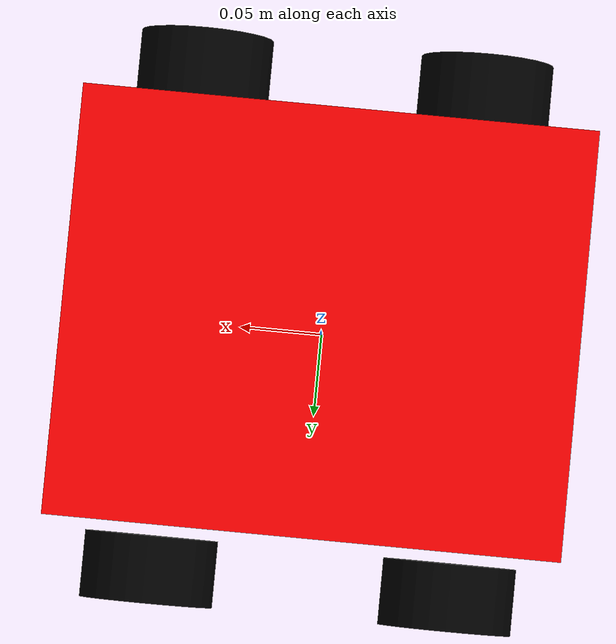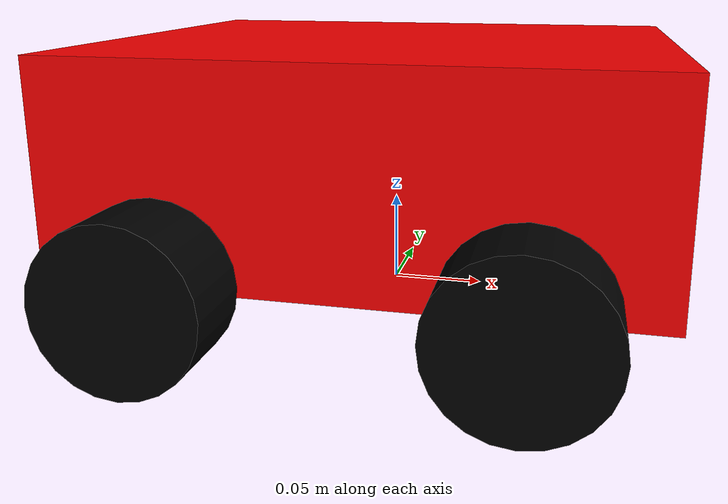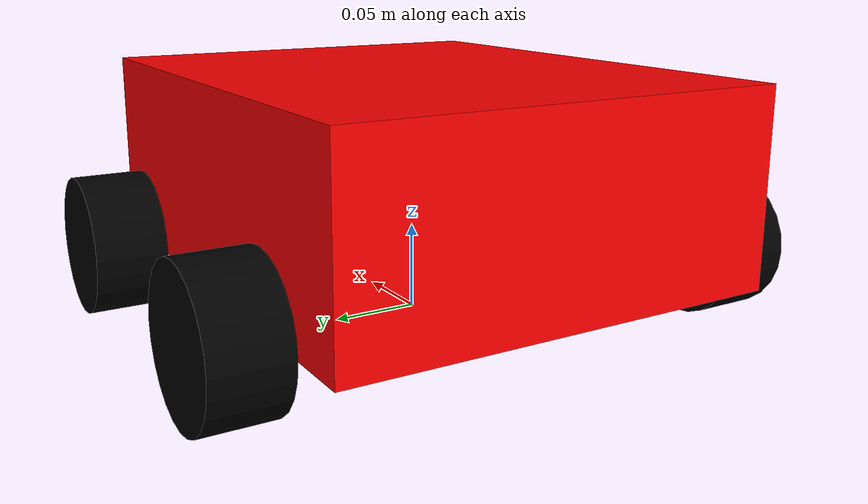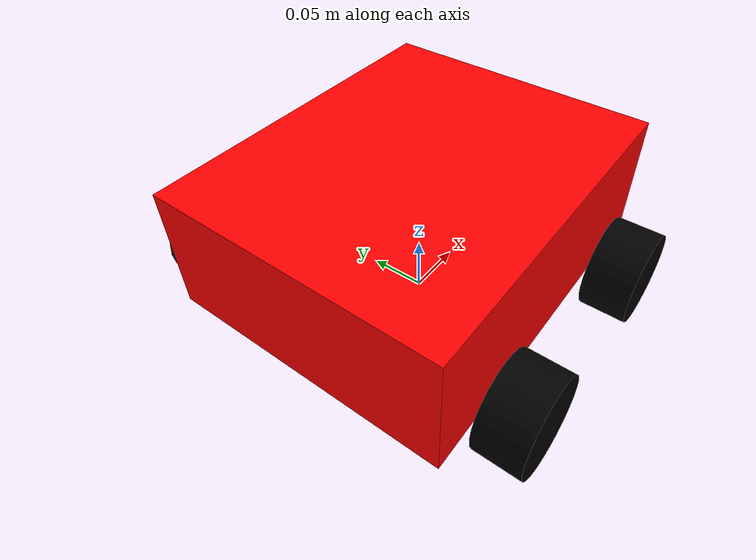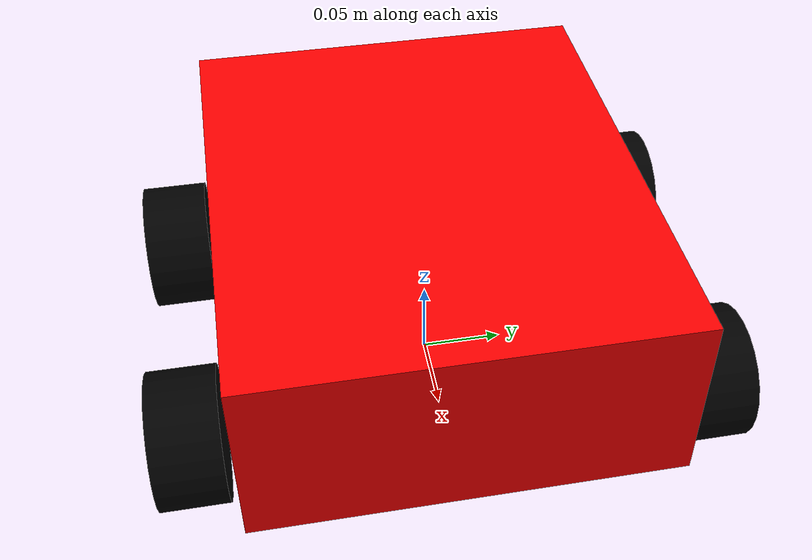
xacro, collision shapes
<?xml version="1.0"?>
<robot name="my_bot" xmlns:xacro="http://www.ros.org/wiki/xacro">

    <xacro:include filename="inertial_macros.xacro" />

    <material name="white">  <color rgba="1 1 1 1"/>      </material>
    <material name="blue">   <color rgba="0.2 0.2 1 1"/> </material>
    <material name="black">  <color rgba="0 0 0 1"/>      </material>
    <material name="red">    <color rgba="1 0 0 1"/>      </material>
    <material name="green">  <color rgba="0 1 0 1"/>      </material>
    <material name="yellow"> <color rgba="1 1 0 1"/>      </material>
    <material name="orange"> <color rgba="1 0.5 0 1"/>   </material>
    <material name="grey">   <color rgba="0.5 0.5 0.5 1"/></material>
    <material name="light_blue"> <color rgba="0.6 0.8 1.0 1.0"/> </material>
    <material name="light_grey"><color rgba="0.7 0.7 0.7 1.0"/></material>

    <link name="base_link">
    </link>

    <joint name="chassis_joint" type="fixed">
        <parent link="base_link"/>
        <child link="chassis"/>
        <origin xyz="0 0 0.087" rpy="0 0 0"/>
    </joint>

    <link name="chassis">
        <visual>
            <origin xyz="0 0 0" rpy="0 0 0"/>
            <geometry>
                <mesh filename="package://calixto-ros-bot/description/meshes/ROS2-Chasis-top-and-bottom-red.stl" scale="0.001 0.001 0.001"/>
            </geometry>
            <material name="red"/>
        </visual>
        <visual>
            <geometry>
                <mesh filename="package://calixto-ros-bot/description/meshes/ROS2-Chasis-motors-grey.stl" scale="0.001 0.001 0.001"/>
            </geometry>
            <material name="light_grey"/>
        </visual>
        <collision>
            <origin xyz="0 0 0" rpy="0 0 0"/>
            <geometry><box size="0.3 0.25 0.11"/></geometry>
        </collision>
        <xacro:inertial_box mass="2.0" x="0.3" y="0.25" z="0.11">
            <origin xyz="0 0 0" rpy="0 0 0"/>
        </xacro:inertial_box>
    </link>

    <gazebo reference="chassis">
        <material>Gazebo/Red</material>
    </gazebo>

    <joint name="front_left_wheel_joint" type="continuous">
        <parent link="base_link"/>
        <child link="front_left_wheel"/>
        <origin xyz="0.09 0.152 0.04" rpy="-1.5708 0 0"/> [cite: 19]
        <axis xyz="0 0 1"/>
    </joint>

    <link name="front_left_wheel">
        <visual>
            <geometry>
                <mesh filename="package://calixto-ros-bot/description/meshes/ROS2-LEFT-URDF.stl" scale="0.001 0.001 0.001"/>
            </geometry>
            <material name="black"/>
        </visual>
        <collision>
            <geometry>
                <cylinder radius="0.04" length="0.04"/>
            </geometry>
        </collision>
        <xacro:inertial_cylinder mass="0.1" length="0.04" radius="0.04">
            <origin xyz="0 0 0" rpy="0 0 0"/>
        </xacro:inertial_cylinder>
    </link>

    <joint name="rear_left_wheel_joint" type="continuous">
        <parent link="base_link"/>
        <child link="rear_left_wheel"/>
        <origin xyz="-0.09 0.152 0.04" rpy="-1.5708 0 0"/> [cite: 21]
        <axis xyz="0 0 1"/>
    </joint>

    <link name="rear_left_wheel">
        <visual>
            <geometry>
                <mesh filename="package://calixto-ros-bot/description/meshes/ROS2-LEFT-URDF.stl" scale="0.001 0.001 0.001"/>
            </geometry>
            <material name="black"/>
        </visual>
        <collision>
            <geometry>
                <cylinder radius="0.04" length="0.04"/>
            </geometry>
        </collision>
        <xacro:inertial_cylinder mass="0.1" length="0.04" radius="0.04">
            <origin xyz="0 0 0" rpy="0 0 0"/>
        </xacro:inertial_cylinder>
    </link>

    <joint name="front_right_wheel_joint" type="continuous">
        <parent link="base_link"/>
        <child link="front_right_wheel"/>
        <origin xyz="0.085 -0.152 0.04" rpy="-1.5708 0 0"/> [cite: 22]
        <axis xyz="0 0 1"/>
    </joint>

    <link name="front_right_wheel">
        <visual>
            <geometry>
                <mesh filename="package://calixto-ros-bot/description/meshes/ROS2-RIGHT-URDF.stl" scale="0.001 0.001 0.001"/>
            </geometry>
            <material name="black"/>
        </visual>
        <collision>
            <geometry>
                <cylinder radius="0.04" length="0.04"/>
            </geometry>
        </collision>
        <xacro:inertial_cylinder mass="0.1" length="0.04" radius="0.04">
            <origin xyz="0 0 0" rpy="0 0 0"/>
        </xacro:inertial_cylinder>
    </link>

    <joint name="rear_right_wheel_joint" type="continuous">
        <parent link="base_link"/>
        <child link="rear_right_wheel"/>
        <origin xyz="-0.085 -0.152 0.04" rpy="-1.5708 0 0"/> [cite: 23]
        <axis xyz="0 0 1"/>
    </joint>

    <link name="rear_right_wheel">
        <visual>
            <geometry>
                <mesh filename="package://calixto-ros-bot/description/meshes/ROS2-RIGHT-URDF.stl" scale="0.001 0.001 0.001"/>
            </geometry>
            <material name="black"/>
        </visual>
        <collision>
            <geometry>
                <cylinder radius="0.04" length="0.04"/>
            </geometry>
        </collision>
        <xacro:inertial_cylinder mass="0.1" length="0.04" radius="0.04">
            <origin xyz="0 0 0" rpy="0 0 0"/>
        </xacro:inertial_cylinder>
    </link>

	<link name="imu_link"/>

	<joint name="imu_joint" type="fixed">
	  <parent link="base_link"/>
	  <child link="imu_link"/>
	  <origin xyz="0 0 0" rpy="0 0 0"/>
	</joint>

    <gazebo reference="front_left_wheel"> <material>Gazebo/Black</material> </gazebo>
    <gazebo reference="rear_left_wheel">  <material>Gazebo/Black</material> </gazebo>
    <gazebo reference="front_right_wheel"> <material>Gazebo/Black</material> </gazebo>
    <gazebo reference="rear_right_wheel">  <material>Gazebo/Black</material> </gazebo>

</robot>
